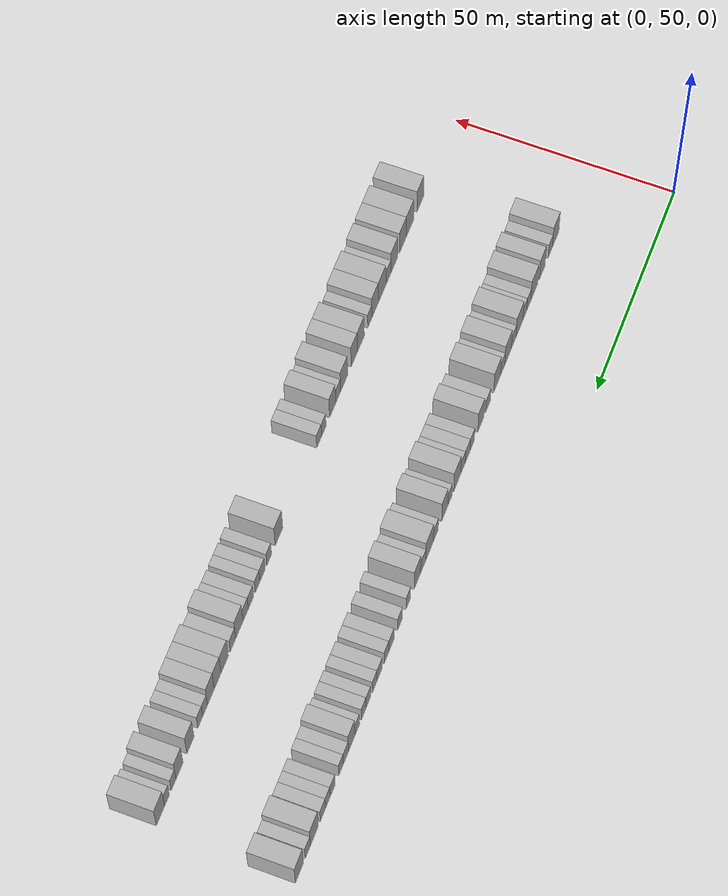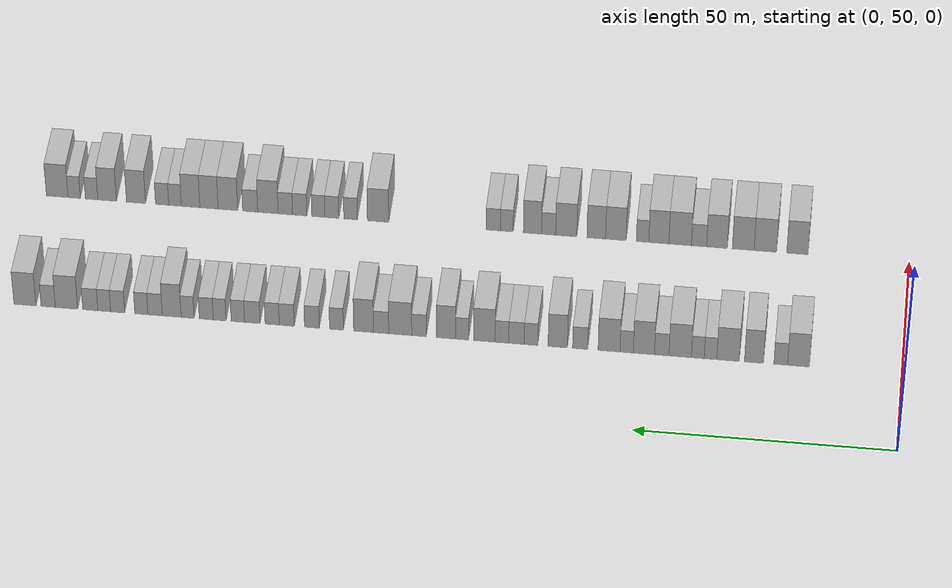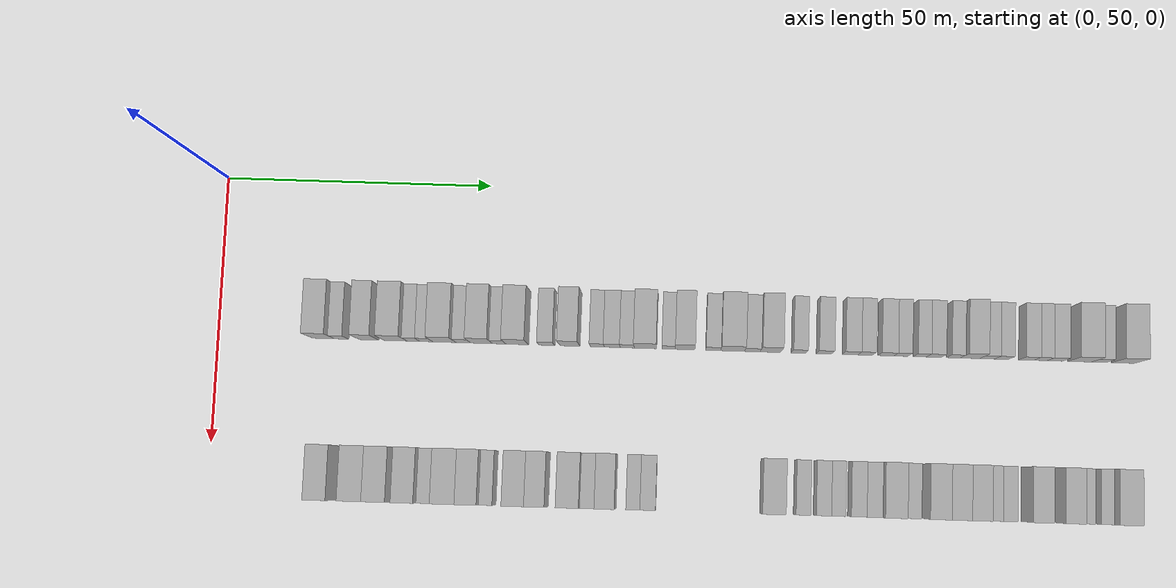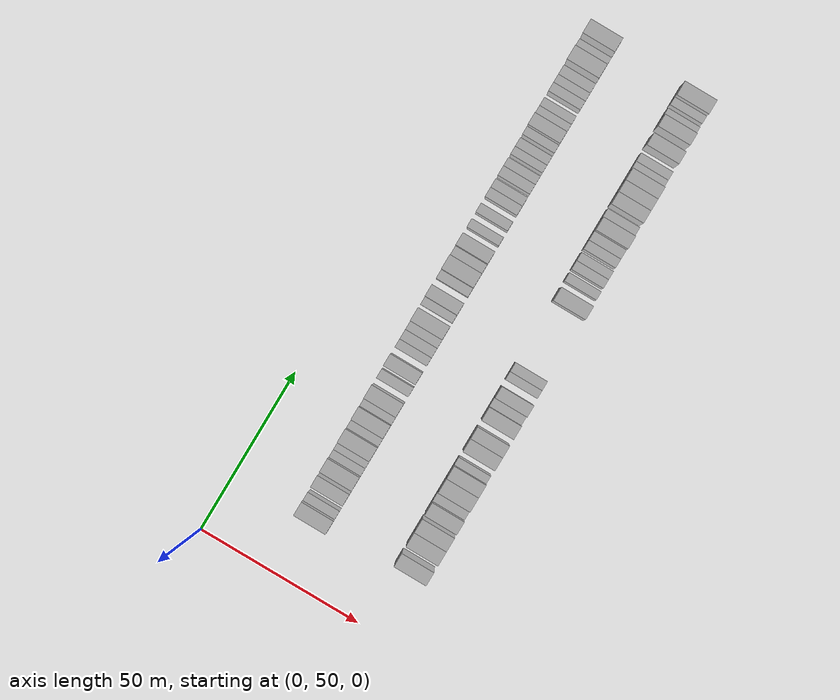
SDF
<sdf version="1.6">
 <world name="default">
  <model name="building_78">
   <static>1</static>
   <pose>25.0000 69.8768 0 0.000000 0.000000 0.000000</pose>
   <link name="link">
    <pose>0 0 4.50 0 0 0</pose>
    <collision name="collision"><geometry><box><size>10.0000 4.1798 9.0000</size></box></geometry></collision>
    <visual name="visual">
     <cast_shadows>0</cast_shadows>
     <geometry><box><size>10.0000 4.1798 9.0000</size></box></geometry>
     <material>
      <script>
       <uri>model://HANNAS_wall/materials/scripts</uri>
       <uri>model://HANNAS_wall/materials/textures</uri>
       <name>vrc/HANNAS_wall</name>
      </script>
     </material>
    </visual>
   </link>
  </model>
  <model name="building_79">
   <static>1</static>
   <pose>25.0000 73.2762 0 0.000000 0.000000 0.000000</pose>
   <link name="link">
    <pose>0 0 3.00 0 0 0</pose>
    <collision name="collision"><geometry><box><size>10.0000 2.6189 6.0000</size></box></geometry></collision>
    <visual name="visual">
     <cast_shadows>0</cast_shadows>
     <geometry><box><size>10.0000 2.6189 6.0000</size></box></geometry>
     <material>
      <script>
       <uri>model://HANNAS_wall/materials/scripts</uri>
       <uri>model://HANNAS_wall/materials/textures</uri>
       <name>vrc/HANNAS_wall</name>
      </script>
     </material>
    </visual>
   </link>
  </model>
  <model name="building_80">
   <static>1</static>
   <pose>25.0000 78.4050 0 0.000000 0.000000 0.000000</pose>
   <link name="link">
    <pose>0 0 4.50 0 0 0</pose>
    <collision name="collision"><geometry><box><size>10.0000 3.6388 9.0000</size></box></geometry></collision>
    <visual name="visual">
     <cast_shadows>0</cast_shadows>
     <geometry><box><size>10.0000 3.6388 9.0000</size></box></geometry>
     <material>
      <script>
       <uri>model://HANNAS_wall/materials/scripts</uri>
       <uri>model://HANNAS_wall/materials/textures</uri>
       <name>vrc/HANNAS_wall</name>
      </script>
     </material>
    </visual>
   </link>
  </model>
  <model name="building_81">
   <static>1</static>
   <pose>25.0000 83.3728 0 0.000000 0.000000 0.000000</pose>
   <link name="link">
    <pose>0 0 4.50 0 0 0</pose>
    <collision name="collision"><geometry><box><size>10.0000 4.2968 9.0000</size></box></geometry></collision>
    <visual name="visual">
     <cast_shadows>0</cast_shadows>
     <geometry><box><size>10.0000 4.2968 9.0000</size></box></geometry>
     <material>
      <script>
       <uri>model://HANNAS_wall/materials/scripts</uri>
       <uri>model://HANNAS_wall/materials/textures</uri>
       <name>vrc/HANNAS_wall</name>
      </script>
     </material>
    </visual>
   </link>
  </model>
  <model name="building_82">
   <static>1</static>
   <pose>25.0000 86.7367 0 0.000000 0.000000 0.000000</pose>
   <link name="link">
    <pose>0 0 3.00 0 0 0</pose>
    <collision name="collision"><geometry><box><size>10.0000 2.4311 6.0000</size></box></geometry></collision>
    <visual name="visual">
     <cast_shadows>0</cast_shadows>
     <geometry><box><size>10.0000 2.4311 6.0000</size></box></geometry>
     <material>
      <script>
       <uri>model://HANNAS_wall/materials/scripts</uri>
       <uri>model://HANNAS_wall/materials/textures</uri>
       <name>vrc/HANNAS_wall</name>
      </script>
     </material>
    </visual>
   </link>
  </model>
  <model name="building_83">
   <static>1</static>
   <pose>25.0000 89.1733 0 0.000000 0.000000 0.000000</pose>
   <link name="link">
    <pose>0 0 3.00 0 0 0</pose>
    <collision name="collision"><geometry><box><size>10.0000 2.4420 6.0000</size></box></geometry></collision>
    <visual name="visual">
     <cast_shadows>0</cast_shadows>
     <geometry><box><size>10.0000 2.4420 6.0000</size></box></geometry>
     <material>
      <script>
       <uri>model://HANNAS_wall/materials/scripts</uri>
       <uri>model://HANNAS_wall/materials/textures</uri>
       <name>vrc/HANNAS_wall</name>
      </script>
     </material>
    </visual>
   </link>
  </model>
  <model name="building_84">
   <static>1</static>
   <pose>25.0000 92.5579 0 0.000000 0.000000 0.000000</pose>
   <link name="link">
    <pose>0 0 4.50 0 0 0</pose>
    <collision name="collision"><geometry><box><size>10.0000 4.3274 9.0000</size></box></geometry></collision>
    <visual name="visual">
     <cast_shadows>0</cast_shadows>
     <geometry><box><size>10.0000 4.3274 9.0000</size></box></geometry>
     <material>
      <script>
       <uri>model://HANNAS_wall/materials/scripts</uri>
       <uri>model://HANNAS_wall/materials/textures</uri>
       <name>vrc/HANNAS_wall</name>
      </script>
     </material>
    </visual>
   </link>
  </model>
  <model name="building_85">
   <static>1</static>
   <pose>25.0000 96.1145 0 0.000000 0.000000 0.000000</pose>
   <link name="link">
    <pose>0 0 3.00 0 0 0</pose>
    <collision name="collision"><geometry><box><size>10.0000 2.7858 6.0000</size></box></geometry></collision>
    <visual name="visual">
     <cast_shadows>0</cast_shadows>
     <geometry><box><size>10.0000 2.7858 6.0000</size></box></geometry>
     <material>
      <script>
       <uri>model://HANNAS_wall/materials/scripts</uri>
       <uri>model://HANNAS_wall/materials/textures</uri>
       <name>vrc/HANNAS_wall</name>
      </script>
     </material>
    </visual>
   </link>
  </model>
  <model name="building_86">
   <static>1</static>
   <pose>25.0000 99.5493 0 0.000000 0.000000 0.000000</pose>
   <link name="link">
    <pose>0 0 4.50 0 0 0</pose>
    <collision name="collision"><geometry><box><size>10.0000 4.0838 9.0000</size></box></geometry></collision>
    <visual name="visual">
     <cast_shadows>0</cast_shadows>
     <geometry><box><size>10.0000 4.0838 9.0000</size></box></geometry>
     <material>
      <script>
       <uri>model://HANNAS_wall/materials/scripts</uri>
       <uri>model://HANNAS_wall/materials/textures</uri>
       <name>vrc/HANNAS_wall</name>
      </script>
     </material>
    </visual>
   </link>
  </model>
  <model name="building_87">
   <static>1</static>
   <pose>25.0000 102.8558 0 0.000000 0.000000 0.000000</pose>
   <link name="link">
    <pose>0 0 3.00 0 0 0</pose>
    <collision name="collision"><geometry><box><size>10.0000 2.5292 6.0000</size></box></geometry></collision>
    <visual name="visual">
     <cast_shadows>0</cast_shadows>
     <geometry><box><size>10.0000 2.5292 6.0000</size></box></geometry>
     <material>
      <script>
       <uri>model://HANNAS_wall/materials/scripts</uri>
       <uri>model://HANNAS_wall/materials/textures</uri>
       <name>vrc/HANNAS_wall</name>
      </script>
     </material>
    </visual>
   </link>
  </model>
  <model name="building_88">
   <static>1</static>
   <pose>25.0000 106.2417 0 0.000000 0.000000 0.000000</pose>
   <link name="link">
    <pose>0 0 4.50 0 0 0</pose>
    <collision name="collision"><geometry><box><size>10.0000 4.2426 9.0000</size></box></geometry></collision>
    <visual name="visual">
     <cast_shadows>0</cast_shadows>
     <geometry><box><size>10.0000 4.2426 9.0000</size></box></geometry>
     <material>
      <script>
       <uri>model://HANNAS_wall/materials/scripts</uri>
       <uri>model://HANNAS_wall/materials/textures</uri>
       <name>vrc/HANNAS_wall</name>
      </script>
     </material>
    </visual>
   </link>
  </model>
  <model name="building_89">
   <static>1</static>
   <pose>25.0000 111.8222 0 0.000000 0.000000 0.000000</pose>
   <link name="link">
    <pose>0 0 3.00 0 0 0</pose>
    <collision name="collision"><geometry><box><size>10.0000 2.9185 6.0000</size></box></geometry></collision>
    <visual name="visual">
     <cast_shadows>0</cast_shadows>
     <geometry><box><size>10.0000 2.9185 6.0000</size></box></geometry>
     <material>
      <script>
       <uri>model://HANNAS_wall/materials/scripts</uri>
       <uri>model://HANNAS_wall/materials/textures</uri>
       <name>vrc/HANNAS_wall</name>
      </script>
     </material>
    </visual>
   </link>
  </model>
  <model name="building_90">
   <static>1</static>
   <pose>25.0000 116.1416 0 0.000000 0.000000 0.000000</pose>
   <link name="link">
    <pose>0 0 4.50 0 0 0</pose>
    <collision name="collision"><geometry><box><size>10.0000 3.7203 9.0000</size></box></geometry></collision>
    <visual name="visual">
     <cast_shadows>0</cast_shadows>
     <geometry><box><size>10.0000 3.7203 9.0000</size></box></geometry>
     <material>
      <script>
       <uri>model://HANNAS_wall/materials/scripts</uri>
       <uri>model://HANNAS_wall/materials/textures</uri>
       <name>vrc/HANNAS_wall</name>
      </script>
     </material>
    </visual>
   </link>
  </model>
  <model name="building_91">
   <static>1</static>
   <pose>25.0000 121.2963 0 0.000000 0.000000 0.000000</pose>
   <link name="link">
    <pose>0 0 3.00 0 0 0</pose>
    <collision name="collision"><geometry><box><size>10.0000 2.5892 6.0000</size></box></geometry></collision>
    <visual name="visual">
     <cast_shadows>0</cast_shadows>
     <geometry><box><size>10.0000 2.5892 6.0000</size></box></geometry>
     <material>
      <script>
       <uri>model://HANNAS_wall/materials/scripts</uri>
       <uri>model://HANNAS_wall/materials/textures</uri>
       <name>vrc/HANNAS_wall</name>
      </script>
     </material>
    </visual>
   </link>
  </model>
  <model name="building_92">
   <static>1</static>
   <pose>25.0000 124.0865 0 0.000000 0.000000 0.000000</pose>
   <link name="link">
    <pose>0 0 3.00 0 0 0</pose>
    <collision name="collision"><geometry><box><size>10.0000 2.9911 6.0000</size></box></geometry></collision>
    <visual name="visual">
     <cast_shadows>0</cast_shadows>
     <geometry><box><size>10.0000 2.9911 6.0000</size></box></geometry>
     <material>
      <script>
       <uri>model://HANNAS_wall/materials/scripts</uri>
       <uri>model://HANNAS_wall/materials/textures</uri>
       <name>vrc/HANNAS_wall</name>
      </script>
     </material>
    </visual>
   </link>
  </model>
  <model name="building_93">
   <static>1</static>
   <pose>25.0000 126.9025 0 0.000000 0.000000 0.000000</pose>
   <link name="link">
    <pose>0 0 3.00 0 0 0</pose>
    <collision name="collision"><geometry><box><size>10.0000 2.6409 6.0000</size></box></geometry></collision>
    <visual name="visual">
     <cast_shadows>0</cast_shadows>
     <geometry><box><size>10.0000 2.6409 6.0000</size></box></geometry>
     <material>
      <script>
       <uri>model://HANNAS_wall/materials/scripts</uri>
       <uri>model://HANNAS_wall/materials/textures</uri>
       <name>vrc/HANNAS_wall</name>
      </script>
     </material>
    </visual>
   </link>
  </model>
  <model name="building_94">
   <static>1</static>
   <pose>25.0000 130.3053 0 0.000000 0.000000 0.000000</pose>
   <link name="link">
    <pose>0 0 4.50 0 0 0</pose>
    <collision name="collision"><geometry><box><size>10.0000 4.1647 9.0000</size></box></geometry></collision>
    <visual name="visual">
     <cast_shadows>0</cast_shadows>
     <geometry><box><size>10.0000 4.1647 9.0000</size></box></geometry>
     <material>
      <script>
       <uri>model://HANNAS_wall/materials/scripts</uri>
       <uri>model://HANNAS_wall/materials/textures</uri>
       <name>vrc/HANNAS_wall</name>
      </script>
     </material>
    </visual>
   </link>
  </model>
  <model name="building_95">
   <static>1</static>
   <pose>25.0000 134.6357 0 0.000000 0.000000 0.000000</pose>
   <link name="link">
    <pose>0 0 3.00 0 0 0</pose>
    <collision name="collision"><geometry><box><size>10.0000 2.4962 6.0000</size></box></geometry></collision>
    <visual name="visual">
     <cast_shadows>0</cast_shadows>
     <geometry><box><size>10.0000 2.4962 6.0000</size></box></geometry>
     <material>
      <script>
       <uri>model://HANNAS_wall/materials/scripts</uri>
       <uri>model://HANNAS_wall/materials/textures</uri>
       <name>vrc/HANNAS_wall</name>
      </script>
     </material>
    </visual>
   </link>
  </model>
  <model name="building_96">
   <static>1</static>
   <pose>25.0000 137.7165 0 0.000000 0.000000 0.000000</pose>
   <link name="link">
    <pose>0 0 4.50 0 0 0</pose>
    <collision name="collision"><geometry><box><size>10.0000 3.6654 9.0000</size></box></geometry></collision>
    <visual name="visual">
     <cast_shadows>0</cast_shadows>
     <geometry><box><size>10.0000 3.6654 9.0000</size></box></geometry>
     <material>
      <script>
       <uri>model://HANNAS_wall/materials/scripts</uri>
       <uri>model://HANNAS_wall/materials/textures</uri>
       <name>vrc/HANNAS_wall</name>
      </script>
     </material>
    </visual>
   </link>
  </model>
  <model name="building_97">
   <static>1</static>
   <pose>25.0000 142.9548 0 0.000000 0.000000 0.000000</pose>
   <link name="link">
    <pose>0 0 3.00 0 0 0</pose>
    <collision name="collision"><geometry><box><size>10.0000 2.8111 6.0000</size></box></geometry></collision>
    <visual name="visual">
     <cast_shadows>0</cast_shadows>
     <geometry><box><size>10.0000 2.8111 6.0000</size></box></geometry>
     <material>
      <script>
       <uri>model://HANNAS_wall/materials/scripts</uri>
       <uri>model://HANNAS_wall/materials/textures</uri>
       <name>vrc/HANNAS_wall</name>
      </script>
     </material>
    </visual>
   </link>
  </model>
  <model name="building_98">
   <static>1</static>
   <pose>25.0000 146.5897 0 0.000000 0.000000 0.000000</pose>
   <link name="link">
    <pose>0 0 4.50 0 0 0</pose>
    <collision name="collision"><geometry><box><size>10.0000 4.4589 9.0000</size></box></geometry></collision>
    <visual name="visual">
     <cast_shadows>0</cast_shadows>
     <geometry><box><size>10.0000 4.4589 9.0000</size></box></geometry>
     <material>
      <script>
       <uri>model://HANNAS_wall/materials/scripts</uri>
       <uri>model://HANNAS_wall/materials/textures</uri>
       <name>vrc/HANNAS_wall</name>
      </script>
     </material>
    </visual>
   </link>
  </model>
  <model name="building_99">
   <static>1</static>
   <pose>25.0000 150.2993 0 0.000000 0.000000 0.000000</pose>
   <link name="link">
    <pose>0 0 3.00 0 0 0</pose>
    <collision name="collision"><geometry><box><size>10.0000 2.9602 6.0000</size></box></geometry></collision>
    <visual name="visual">
     <cast_shadows>0</cast_shadows>
     <geometry><box><size>10.0000 2.9602 6.0000</size></box></geometry>
     <material>
      <script>
       <uri>model://HANNAS_wall/materials/scripts</uri>
       <uri>model://HANNAS_wall/materials/textures</uri>
       <name>vrc/HANNAS_wall</name>
      </script>
     </material>
    </visual>
   </link>
  </model>
  <model name="building_100">
   <static>1</static>
   <pose>25.0000 153.7009 0 0.000000 0.000000 0.000000</pose>
   <link name="link">
    <pose>0 0 4.50 0 0 0</pose>
    <collision name="collision"><geometry><box><size>10.0000 3.8431 9.0000</size></box></geometry></collision>
    <visual name="visual">
     <cast_shadows>0</cast_shadows>
     <geometry><box><size>10.0000 3.8431 9.0000</size></box></geometry>
     <material>
      <script>
       <uri>model://HANNAS_wall/materials/scripts</uri>
       <uri>model://HANNAS_wall/materials/textures</uri>
       <name>vrc/HANNAS_wall</name>
      </script>
     </material>
    </visual>
   </link>
  </model>
  <model name="building_101">
   <static>1</static>
   <pose>25.0000 158.9646 0 0.000000 0.000000 0.000000</pose>
   <link name="link">
    <pose>0 0 3.00 0 0 0</pose>
    <collision name="collision"><geometry><box><size>10.0000 2.6843 6.0000</size></box></geometry></collision>
    <visual name="visual">
     <cast_shadows>0</cast_shadows>
     <geometry><box><size>10.0000 2.6843 6.0000</size></box></geometry>
     <material>
      <script>
       <uri>model://HANNAS_wall/materials/scripts</uri>
       <uri>model://HANNAS_wall/materials/textures</uri>
       <name>vrc/HANNAS_wall</name>
      </script>
     </material>
    </visual>
   </link>
  </model>
  <model name="building_102">
   <static>1</static>
   <pose>25.0000 163.7403 0 0.000000 0.000000 0.000000</pose>
   <link name="link">
    <pose>0 0 3.00 0 0 0</pose>
    <collision name="collision"><geometry><box><size>10.0000 2.8672 6.0000</size></box></geometry></collision>
    <visual name="visual">
     <cast_shadows>0</cast_shadows>
     <geometry><box><size>10.0000 2.8672 6.0000</size></box></geometry>
     <material>
      <script>
       <uri>model://HANNAS_wall/materials/scripts</uri>
       <uri>model://HANNAS_wall/materials/textures</uri>
       <name>vrc/HANNAS_wall</name>
      </script>
     </material>
    </visual>
   </link>
  </model>
  <model name="building_103">
   <static>1</static>
   <pose>25.0000 168.6398 0 0.000000 0.000000 0.000000</pose>
   <link name="link">
    <pose>0 0 3.00 0 0 0</pose>
    <collision name="collision"><geometry><box><size>10.0000 2.9318 6.0000</size></box></geometry></collision>
    <visual name="visual">
     <cast_shadows>0</cast_shadows>
     <geometry><box><size>10.0000 2.9318 6.0000</size></box></geometry>
     <material>
      <script>
       <uri>model://HANNAS_wall/materials/scripts</uri>
       <uri>model://HANNAS_wall/materials/textures</uri>
       <name>vrc/HANNAS_wall</name>
      </script>
     </material>
    </visual>
   </link>
  </model>
  <model name="building_104">
   <static>1</static>
   <pose>25.0000 171.4720 0 0.000000 0.000000 0.000000</pose>
   <link name="link">
    <pose>0 0 3.00 0 0 0</pose>
    <collision name="collision"><geometry><box><size>10.0000 2.7326 6.0000</size></box></geometry></collision>
    <visual name="visual">
     <cast_shadows>0</cast_shadows>
     <geometry><box><size>10.0000 2.7326 6.0000</size></box></geometry>
     <material>
      <script>
       <uri>model://HANNAS_wall/materials/scripts</uri>
       <uri>model://HANNAS_wall/materials/textures</uri>
       <name>vrc/HANNAS_wall</name>
      </script>
     </material>
    </visual>
   </link>
  </model>
  <model name="building_105">
   <static>1</static>
   <pose>25.0000 175.3368 0 0.000000 0.000000 0.000000</pose>
   <link name="link">
    <pose>0 0 3.00 0 0 0</pose>
    <collision name="collision"><geometry><box><size>10.0000 2.9971 6.0000</size></box></geometry></collision>
    <visual name="visual">
     <cast_shadows>0</cast_shadows>
     <geometry><box><size>10.0000 2.9971 6.0000</size></box></geometry>
     <material>
      <script>
       <uri>model://HANNAS_wall/materials/scripts</uri>
       <uri>model://HANNAS_wall/materials/textures</uri>
       <name>vrc/HANNAS_wall</name>
      </script>
     </material>
    </visual>
   </link>
  </model>
  <model name="building_106">
   <static>1</static>
   <pose>25.0000 178.1459 0 0.000000 0.000000 0.000000</pose>
   <link name="link">
    <pose>0 0 3.00 0 0 0</pose>
    <collision name="collision"><geometry><box><size>10.0000 2.6212 6.0000</size></box></geometry></collision>
    <visual name="visual">
     <cast_shadows>0</cast_shadows>
     <geometry><box><size>10.0000 2.6212 6.0000</size></box></geometry>
     <material>
      <script>
       <uri>model://HANNAS_wall/materials/scripts</uri>
       <uri>model://HANNAS_wall/materials/textures</uri>
       <name>vrc/HANNAS_wall</name>
      </script>
     </material>
    </visual>
   </link>
  </model>
  <model name="building_107">
   <static>1</static>
   <pose>25.0000 181.6971 0 0.000000 0.000000 0.000000</pose>
   <link name="link">
    <pose>0 0 3.00 0 0 0</pose>
    <collision name="collision"><geometry><box><size>10.0000 2.4813 6.0000</size></box></geometry></collision>
    <visual name="visual">
     <cast_shadows>0</cast_shadows>
     <geometry><box><size>10.0000 2.4813 6.0000</size></box></geometry>
     <material>
      <script>
       <uri>model://HANNAS_wall/materials/scripts</uri>
       <uri>model://HANNAS_wall/materials/textures</uri>
       <name>vrc/HANNAS_wall</name>
      </script>
     </material>
    </visual>
   </link>
  </model>
  <model name="building_108">
   <static>1</static>
   <pose>25.0000 184.3073 0 0.000000 0.000000 0.000000</pose>
   <link name="link">
    <pose>0 0 3.00 0 0 0</pose>
    <collision name="collision"><geometry><box><size>10.0000 2.7390 6.0000</size></box></geometry></collision>
    <visual name="visual">
     <cast_shadows>0</cast_shadows>
     <geometry><box><size>10.0000 2.7390 6.0000</size></box></geometry>
     <material>
      <script>
       <uri>model://HANNAS_wall/materials/scripts</uri>
       <uri>model://HANNAS_wall/materials/textures</uri>
       <name>vrc/HANNAS_wall</name>
      </script>
     </material>
    </visual>
   </link>
  </model>
  <model name="building_109">
   <static>1</static>
   <pose>25.0000 187.9462 0 0.000000 0.000000 0.000000</pose>
   <link name="link">
    <pose>0 0 3.00 0 0 0</pose>
    <collision name="collision"><geometry><box><size>10.0000 2.5390 6.0000</size></box></geometry></collision>
    <visual name="visual">
     <cast_shadows>0</cast_shadows>
     <geometry><box><size>10.0000 2.5390 6.0000</size></box></geometry>
     <material>
      <script>
       <uri>model://HANNAS_wall/materials/scripts</uri>
       <uri>model://HANNAS_wall/materials/textures</uri>
       <name>vrc/HANNAS_wall</name>
      </script>
     </material>
    </visual>
   </link>
  </model>
  <model name="building_110">
   <static>1</static>
   <pose>25.0000 191.0550 0 0.000000 0.000000 0.000000</pose>
   <link name="link">
    <pose>0 0 4.50 0 0 0</pose>
    <collision name="collision"><geometry><box><size>10.0000 3.6785 9.0000</size></box></geometry></collision>
    <visual name="visual">
     <cast_shadows>0</cast_shadows>
     <geometry><box><size>10.0000 3.6785 9.0000</size></box></geometry>
     <material>
      <script>
       <uri>model://HANNAS_wall/materials/scripts</uri>
       <uri>model://HANNAS_wall/materials/textures</uri>
       <name>vrc/HANNAS_wall</name>
      </script>
     </material>
    </visual>
   </link>
  </model>
  <model name="building_111">
   <static>1</static>
   <pose>25.0000 194.2967 0 0.000000 0.000000 0.000000</pose>
   <link name="link">
    <pose>0 0 3.00 0 0 0</pose>
    <collision name="collision"><geometry><box><size>10.0000 2.8050 6.0000</size></box></geometry></collision>
    <visual name="visual">
     <cast_shadows>0</cast_shadows>
     <geometry><box><size>10.0000 2.8050 6.0000</size></box></geometry>
     <material>
      <script>
       <uri>model://HANNAS_wall/materials/scripts</uri>
       <uri>model://HANNAS_wall/materials/textures</uri>
       <name>vrc/HANNAS_wall</name>
      </script>
     </material>
    </visual>
   </link>
  </model>
  <model name="building_112">
   <static>1</static>
   <pose>25.0000 196.9752 0 0.000000 0.000000 0.000000</pose>
   <link name="link">
    <pose>0 0 3.00 0 0 0</pose>
    <collision name="collision"><geometry><box><size>10.0000 2.5521 6.0000</size></box></geometry></collision>
    <visual name="visual">
     <cast_shadows>0</cast_shadows>
     <geometry><box><size>10.0000 2.5521 6.0000</size></box></geometry>
     <material>
      <script>
       <uri>model://HANNAS_wall/materials/scripts</uri>
       <uri>model://HANNAS_wall/materials/textures</uri>
       <name>vrc/HANNAS_wall</name>
      </script>
     </material>
    </visual>
   </link>
  </model>
  <model name="building_113">
   <static>1</static>
   <pose>25.0000 201.6248 0 0.000000 0.000000 0.000000</pose>
   <link name="link">
    <pose>0 0 3.00 0 0 0</pose>
    <collision name="collision"><geometry><box><size>10.0000 2.7472 6.0000</size></box></geometry></collision>
    <visual name="visual">
     <cast_shadows>0</cast_shadows>
     <geometry><box><size>10.0000 2.7472 6.0000</size></box></geometry>
     <material>
      <script>
       <uri>model://HANNAS_wall/materials/scripts</uri>
       <uri>model://HANNAS_wall/materials/textures</uri>
       <name>vrc/HANNAS_wall</name>
      </script>
     </material>
    </visual>
   </link>
  </model>
  <model name="building_114">
   <static>1</static>
   <pose>25.0000 204.2453 0 0.000000 0.000000 0.000000</pose>
   <link name="link">
    <pose>0 0 3.00 0 0 0</pose>
    <collision name="collision"><geometry><box><size>10.0000 2.4937 6.0000</size></box></geometry></collision>
    <visual name="visual">
     <cast_shadows>0</cast_shadows>
     <geometry><box><size>10.0000 2.4937 6.0000</size></box></geometry>
     <material>
      <script>
       <uri>model://HANNAS_wall/materials/scripts</uri>
       <uri>model://HANNAS_wall/materials/textures</uri>
       <name>vrc/HANNAS_wall</name>
      </script>
     </material>
    </visual>
   </link>
  </model>
  <model name="building_115">
   <static>1</static>
   <pose>25.0000 206.9660 0 0.000000 0.000000 0.000000</pose>
   <link name="link">
    <pose>0 0 3.00 0 0 0</pose>
    <collision name="collision"><geometry><box><size>10.0000 2.9478 6.0000</size></box></geometry></collision>
    <visual name="visual">
     <cast_shadows>0</cast_shadows>
     <geometry><box><size>10.0000 2.9478 6.0000</size></box></geometry>
     <material>
      <script>
       <uri>model://HANNAS_wall/materials/scripts</uri>
       <uri>model://HANNAS_wall/materials/textures</uri>
       <name>vrc/HANNAS_wall</name>
      </script>
     </material>
    </visual>
   </link>
  </model>
  <model name="building_116">
   <static>1</static>
   <pose>25.0000 211.6243 0 0.000000 0.000000 0.000000</pose>
   <link name="link">
    <pose>0 0 4.50 0 0 0</pose>
    <collision name="collision"><geometry><box><size>10.0000 4.3688 9.0000</size></box></geometry></collision>
    <visual name="visual">
     <cast_shadows>0</cast_shadows>
     <geometry><box><size>10.0000 4.3688 9.0000</size></box></geometry>
     <material>
      <script>
       <uri>model://HANNAS_wall/materials/scripts</uri>
       <uri>model://HANNAS_wall/materials/textures</uri>
       <name>vrc/HANNAS_wall</name>
      </script>
     </material>
    </visual>
   </link>
  </model>
  <model name="building_117">
   <static>1</static>
   <pose>25.0000 215.2082 0 0.000000 0.000000 0.000000</pose>
   <link name="link">
    <pose>0 0 3.00 0 0 0</pose>
    <collision name="collision"><geometry><box><size>10.0000 2.7990 6.0000</size></box></geometry></collision>
    <visual name="visual">
     <cast_shadows>0</cast_shadows>
     <geometry><box><size>10.0000 2.7990 6.0000</size></box></geometry>
     <material>
      <script>
       <uri>model://HANNAS_wall/materials/scripts</uri>
       <uri>model://HANNAS_wall/materials/textures</uri>
       <name>vrc/HANNAS_wall</name>
      </script>
     </material>
    </visual>
   </link>
  </model>
  <model name="building_118">
   <static>1</static>
   <pose>25.0000 219.7642 0 0.000000 0.000000 0.000000</pose>
   <link name="link">
    <pose>0 0 4.50 0 0 0</pose>
    <collision name="collision"><geometry><box><size>10.0000 4.3131 9.0000</size></box></geometry></collision>
    <visual name="visual">
     <cast_shadows>0</cast_shadows>
     <geometry><box><size>10.0000 4.3131 9.0000</size></box></geometry>
     <material>
      <script>
       <uri>model://HANNAS_wall/materials/scripts</uri>
       <uri>model://HANNAS_wall/materials/textures</uri>
       <name>vrc/HANNAS_wall</name>
      </script>
     </material>
    </visual>
   </link>
  </model>
  <model name="building_189">
   <static>1</static>
   <pose>55.0000 71.9140 0 0.000000 0.000000 0.000000</pose>
   <link name="link">
    <pose>0 0 4.50 0 0 0</pose>
    <collision name="collision"><geometry><box><size>10.0000 4.1548 9.0000</size></box></geometry></collision>
    <visual name="visual">
     <cast_shadows>0</cast_shadows>
     <geometry><box><size>10.0000 4.1548 9.0000</size></box></geometry>
     <material>
      <script>
       <uri>model://HANNAS_wall/materials/scripts</uri>
       <uri>model://HANNAS_wall/materials/textures</uri>
       <name>vrc/HANNAS_wall</name>
      </script>
     </material>
    </visual>
   </link>
  </model>
  <model name="building_190">
   <static>1</static>
   <pose>55.0000 78.1893 0 0.000000 0.000000 0.000000</pose>
   <link name="link">
    <pose>0 0 4.50 0 0 0</pose>
    <collision name="collision"><geometry><box><size>10.0000 4.3958 9.0000</size></box></geometry></collision>
    <visual name="visual">
     <cast_shadows>0</cast_shadows>
     <geometry><box><size>10.0000 4.3958 9.0000</size></box></geometry>
     <material>
      <script>
       <uri>model://HANNAS_wall/materials/scripts</uri>
       <uri>model://HANNAS_wall/materials/textures</uri>
       <name>vrc/HANNAS_wall</name>
      </script>
     </material>
    </visual>
   </link>
  </model>
  <model name="building_191">
   <static>1</static>
   <pose>55.0000 82.5237 0 0.000000 0.000000 0.000000</pose>
   <link name="link">
    <pose>0 0 4.50 0 0 0</pose>
    <collision name="collision"><geometry><box><size>10.0000 4.2730 9.0000</size></box></geometry></collision>
    <visual name="visual">
     <cast_shadows>0</cast_shadows>
     <geometry><box><size>10.0000 4.2730 9.0000</size></box></geometry>
     <material>
      <script>
       <uri>model://HANNAS_wall/materials/scripts</uri>
       <uri>model://HANNAS_wall/materials/textures</uri>
       <name>vrc/HANNAS_wall</name>
      </script>
     </material>
    </visual>
   </link>
  </model>
  <model name="building_192">
   <static>1</static>
   <pose>55.0000 87.6903 0 0.000000 0.000000 0.000000</pose>
   <link name="link">
    <pose>0 0 4.50 0 0 0</pose>
    <collision name="collision"><geometry><box><size>10.0000 4.0600 9.0000</size></box></geometry></collision>
    <visual name="visual">
     <cast_shadows>0</cast_shadows>
     <geometry><box><size>10.0000 4.0600 9.0000</size></box></geometry>
     <material>
      <script>
       <uri>model://HANNAS_wall/materials/scripts</uri>
       <uri>model://HANNAS_wall/materials/textures</uri>
       <name>vrc/HANNAS_wall</name>
      </script>
     </material>
    </visual>
   </link>
  </model>
  <model name="building_193">
   <static>1</static>
   <pose>55.0000 91.1979 0 0.000000 0.000000 0.000000</pose>
   <link name="link">
    <pose>0 0 3.00 0 0 0</pose>
    <collision name="collision"><geometry><box><size>10.0000 2.9552 6.0000</size></box></geometry></collision>
    <visual name="visual">
     <cast_shadows>0</cast_shadows>
     <geometry><box><size>10.0000 2.9552 6.0000</size></box></geometry>
     <material>
      <script>
       <uri>model://HANNAS_wall/materials/scripts</uri>
       <uri>model://HANNAS_wall/materials/textures</uri>
       <name>vrc/HANNAS_wall</name>
      </script>
     </material>
    </visual>
   </link>
  </model>
  <model name="building_194">
   <static>1</static>
   <pose>55.0000 94.8943 0 0.000000 0.000000 0.000000</pose>
   <link name="link">
    <pose>0 0 4.50 0 0 0</pose>
    <collision name="collision"><geometry><box><size>10.0000 4.4377 9.0000</size></box></geometry></collision>
    <visual name="visual">
     <cast_shadows>0</cast_shadows>
     <geometry><box><size>10.0000 4.4377 9.0000</size></box></geometry>
     <material>
      <script>
       <uri>model://HANNAS_wall/materials/scripts</uri>
       <uri>model://HANNAS_wall/materials/textures</uri>
       <name>vrc/HANNAS_wall</name>
      </script>
     </material>
    </visual>
   </link>
  </model>
  <model name="building_195">
   <static>1</static>
   <pose>55.0000 99.0924 0 0.000000 0.000000 0.000000</pose>
   <link name="link">
    <pose>0 0 4.50 0 0 0</pose>
    <collision name="collision"><geometry><box><size>10.0000 3.9585 9.0000</size></box></geometry></collision>
    <visual name="visual">
     <cast_shadows>0</cast_shadows>
     <geometry><box><size>10.0000 3.9585 9.0000</size></box></geometry>
     <material>
      <script>
       <uri>model://HANNAS_wall/materials/scripts</uri>
       <uri>model://HANNAS_wall/materials/textures</uri>
       <name>vrc/HANNAS_wall</name>
      </script>
     </material>
    </visual>
   </link>
  </model>
  <model name="building_196">
   <static>1</static>
   <pose>55.0000 102.2988 0 0.000000 0.000000 0.000000</pose>
   <link name="link">
    <pose>0 0 3.00 0 0 0</pose>
    <collision name="collision"><geometry><box><size>10.0000 2.4543 6.0000</size></box></geometry></collision>
    <visual name="visual">
     <cast_shadows>0</cast_shadows>
     <geometry><box><size>10.0000 2.4543 6.0000</size></box></geometry>
     <material>
      <script>
       <uri>model://HANNAS_wall/materials/scripts</uri>
       <uri>model://HANNAS_wall/materials/textures</uri>
       <name>vrc/HANNAS_wall</name>
      </script>
     </material>
    </visual>
   </link>
  </model>
  <model name="building_197">
   <static>1</static>
   <pose>55.0000 107.5503 0 0.000000 0.000000 0.000000</pose>
   <link name="link">
    <pose>0 0 4.50 0 0 0</pose>
    <collision name="collision"><geometry><box><size>10.0000 4.0487 9.0000</size></box></geometry></collision>
    <visual name="visual">
     <cast_shadows>0</cast_shadows>
     <geometry><box><size>10.0000 4.0487 9.0000</size></box></geometry>
     <material>
      <script>
       <uri>model://HANNAS_wall/materials/scripts</uri>
       <uri>model://HANNAS_wall/materials/textures</uri>
       <name>vrc/HANNAS_wall</name>
      </script>
     </material>
    </visual>
   </link>
  </model>
  <model name="building_198">
   <static>1</static>
   <pose>55.0000 111.4070 0 0.000000 0.000000 0.000000</pose>
   <link name="link">
    <pose>0 0 4.50 0 0 0</pose>
    <collision name="collision"><geometry><box><size>10.0000 3.6648 9.0000</size></box></geometry></collision>
    <visual name="visual">
     <cast_shadows>0</cast_shadows>
     <geometry><box><size>10.0000 3.6648 9.0000</size></box></geometry>
     <material>
      <script>
       <uri>model://HANNAS_wall/materials/scripts</uri>
       <uri>model://HANNAS_wall/materials/textures</uri>
       <name>vrc/HANNAS_wall</name>
      </script>
     </material>
    </visual>
   </link>
  </model>
  <model name="building_199">
   <static>1</static>
   <pose>55.0000 117.3200 0 0.000000 0.000000 0.000000</pose>
   <link name="link">
    <pose>0 0 4.50 0 0 0</pose>
    <collision name="collision"><geometry><box><size>10.0000 4.1611 9.0000</size></box></geometry></collision>
    <visual name="visual">
     <cast_shadows>0</cast_shadows>
     <geometry><box><size>10.0000 4.1611 9.0000</size></box></geometry>
     <material>
      <script>
       <uri>model://HANNAS_wall/materials/scripts</uri>
       <uri>model://HANNAS_wall/materials/textures</uri>
       <name>vrc/HANNAS_wall</name>
      </script>
     </material>
    </visual>
   </link>
  </model>
  <model name="building_200">
   <static>1</static>
   <pose>55.0000 120.7949 0 0.000000 0.000000 0.000000</pose>
   <link name="link">
    <pose>0 0 3.00 0 0 0</pose>
    <collision name="collision"><geometry><box><size>10.0000 2.7888 6.0000</size></box></geometry></collision>
    <visual name="visual">
     <cast_shadows>0</cast_shadows>
     <geometry><box><size>10.0000 2.7888 6.0000</size></box></geometry>
     <material>
      <script>
       <uri>model://HANNAS_wall/materials/scripts</uri>
       <uri>model://HANNAS_wall/materials/textures</uri>
       <name>vrc/HANNAS_wall</name>
      </script>
     </material>
    </visual>
   </link>
  </model>
  <model name="building_201">
   <static>1</static>
   <pose>55.0000 123.9910 0 0.000000 0.000000 0.000000</pose>
   <link name="link">
    <pose>0 0 4.50 0 0 0</pose>
    <collision name="collision"><geometry><box><size>10.0000 3.6033 9.0000</size></box></geometry></collision>
    <visual name="visual">
     <cast_shadows>0</cast_shadows>
     <geometry><box><size>10.0000 3.6033 9.0000</size></box></geometry>
     <material>
      <script>
       <uri>model://HANNAS_wall/materials/scripts</uri>
       <uri>model://HANNAS_wall/materials/textures</uri>
       <name>vrc/HANNAS_wall</name>
      </script>
     </material>
    </visual>
   </link>
  </model>
  <model name="building_202">
   <static>1</static>
   <pose>55.0000 129.0650 0 0.000000 0.000000 0.000000</pose>
   <link name="link">
    <pose>0 0 3.00 0 0 0</pose>
    <collision name="collision"><geometry><box><size>10.0000 2.5448 6.0000</size></box></geometry></collision>
    <visual name="visual">
     <cast_shadows>0</cast_shadows>
     <geometry><box><size>10.0000 2.5448 6.0000</size></box></geometry>
     <material>
      <script>
       <uri>model://HANNAS_wall/materials/scripts</uri>
       <uri>model://HANNAS_wall/materials/textures</uri>
       <name>vrc/HANNAS_wall</name>
      </script>
     </material>
    </visual>
   </link>
  </model>
  <model name="building_203">
   <static>1</static>
   <pose>55.0000 131.7556 0 0.000000 0.000000 0.000000</pose>
   <link name="link">
    <pose>0 0 3.00 0 0 0</pose>
    <collision name="collision"><geometry><box><size>10.0000 2.8365 6.0000</size></box></geometry></collision>
    <visual name="visual">
     <cast_shadows>0</cast_shadows>
     <geometry><box><size>10.0000 2.8365 6.0000</size></box></geometry>
     <material>
      <script>
       <uri>model://HANNAS_wall/materials/scripts</uri>
       <uri>model://HANNAS_wall/materials/textures</uri>
       <name>vrc/HANNAS_wall</name>
      </script>
     </material>
    </visual>
   </link>
  </model>
  <model name="building_204">
   <static>1</static>
   <pose>55.0000 154.5293 0 0.000000 0.000000 0.000000</pose>
   <link name="link">
    <pose>0 0 4.50 0 0 0</pose>
    <collision name="collision"><geometry><box><size>10.0000 4.2369 9.0000</size></box></geometry></collision>
    <visual name="visual">
     <cast_shadows>0</cast_shadows>
     <geometry><box><size>10.0000 4.2369 9.0000</size></box></geometry>
     <material>
      <script>
       <uri>model://HANNAS_wall/materials/scripts</uri>
       <uri>model://HANNAS_wall/materials/textures</uri>
       <name>vrc/HANNAS_wall</name>
      </script>
     </material>
    </visual>
   </link>
  </model>
  <model name="building_205">
   <static>1</static>
   <pose>55.0000 159.9886 0 0.000000 0.000000 0.000000</pose>
   <link name="link">
    <pose>0 0 3.00 0 0 0</pose>
    <collision name="collision"><geometry><box><size>10.0000 2.6817 6.0000</size></box></geometry></collision>
    <visual name="visual">
     <cast_shadows>0</cast_shadows>
     <geometry><box><size>10.0000 2.6817 6.0000</size></box></geometry>
     <material>
      <script>
       <uri>model://HANNAS_wall/materials/scripts</uri>
       <uri>model://HANNAS_wall/materials/textures</uri>
       <name>vrc/HANNAS_wall</name>
      </script>
     </material>
    </visual>
   </link>
  </model>
  <model name="building_206">
   <static>1</static>
   <pose>55.0000 163.7060 0 0.000000 0.000000 0.000000</pose>
   <link name="link">
    <pose>0 0 3.00 0 0 0</pose>
    <collision name="collision"><geometry><box><size>10.0000 2.7531 6.0000</size></box></geometry></collision>
    <visual name="visual">
     <cast_shadows>0</cast_shadows>
     <geometry><box><size>10.0000 2.7531 6.0000</size></box></geometry>
     <material>
      <script>
       <uri>model://HANNAS_wall/materials/scripts</uri>
       <uri>model://HANNAS_wall/materials/textures</uri>
       <name>vrc/HANNAS_wall</name>
      </script>
     </material>
    </visual>
   </link>
  </model>
  <model name="building_207">
   <static>1</static>
   <pose>55.0000 166.3815 0 0.000000 0.000000 0.000000</pose>
   <link name="link">
    <pose>0 0 3.00 0 0 0</pose>
    <collision name="collision"><geometry><box><size>10.0000 2.5978 6.0000</size></box></geometry></collision>
    <visual name="visual">
     <cast_shadows>0</cast_shadows>
     <geometry><box><size>10.0000 2.5978 6.0000</size></box></geometry>
     <material>
      <script>
       <uri>model://HANNAS_wall/materials/scripts</uri>
       <uri>model://HANNAS_wall/materials/textures</uri>
       <name>vrc/HANNAS_wall</name>
      </script>
     </material>
    </visual>
   </link>
  </model>
  <model name="building_208">
   <static>1</static>
   <pose>55.0000 170.1009 0 0.000000 0.000000 0.000000</pose>
   <link name="link">
    <pose>0 0 3.00 0 0 0</pose>
    <collision name="collision"><geometry><box><size>10.0000 2.8410 6.0000</size></box></geometry></collision>
    <visual name="visual">
     <cast_shadows>0</cast_shadows>
     <geometry><box><size>10.0000 2.8410 6.0000</size></box></geometry>
     <material>
      <script>
       <uri>model://HANNAS_wall/materials/scripts</uri>
       <uri>model://HANNAS_wall/materials/textures</uri>
       <name>vrc/HANNAS_wall</name>
      </script>
     </material>
    </visual>
   </link>
  </model>
  <model name="building_209">
   <static>1</static>
   <pose>55.0000 172.9560 0 0.000000 0.000000 0.000000</pose>
   <link name="link">
    <pose>0 0 3.00 0 0 0</pose>
    <collision name="collision"><geometry><box><size>10.0000 2.8693 6.0000</size></box></geometry></collision>
    <visual name="visual">
     <cast_shadows>0</cast_shadows>
     <geometry><box><size>10.0000 2.8693 6.0000</size></box></geometry>
     <material>
      <script>
       <uri>model://HANNAS_wall/materials/scripts</uri>
       <uri>model://HANNAS_wall/materials/textures</uri>
       <name>vrc/HANNAS_wall</name>
      </script>
     </material>
    </visual>
   </link>
  </model>
  <model name="building_210">
   <static>1</static>
   <pose>55.0000 176.4203 0 0.000000 0.000000 0.000000</pose>
   <link name="link">
    <pose>0 0 4.50 0 0 0</pose>
    <collision name="collision"><geometry><box><size>10.0000 4.0591 9.0000</size></box></geometry></collision>
    <visual name="visual">
     <cast_shadows>0</cast_shadows>
     <geometry><box><size>10.0000 4.0591 9.0000</size></box></geometry>
     <material>
      <script>
       <uri>model://HANNAS_wall/materials/scripts</uri>
       <uri>model://HANNAS_wall/materials/textures</uri>
       <name>vrc/HANNAS_wall</name>
      </script>
     </material>
    </visual>
   </link>
  </model>
  <model name="building_211">
   <static>1</static>
   <pose>55.0000 179.9438 0 0.000000 0.000000 0.000000</pose>
   <link name="link">
    <pose>0 0 3.00 0 0 0</pose>
    <collision name="collision"><geometry><box><size>10.0000 2.9880 6.0000</size></box></geometry></collision>
    <visual name="visual">
     <cast_shadows>0</cast_shadows>
     <geometry><box><size>10.0000 2.9880 6.0000</size></box></geometry>
     <material>
      <script>
       <uri>model://HANNAS_wall/materials/scripts</uri>
       <uri>model://HANNAS_wall/materials/textures</uri>
       <name>vrc/HANNAS_wall</name>
      </script>
     </material>
    </visual>
   </link>
  </model>
  <model name="building_212">
   <static>1</static>
   <pose>55.0000 184.3869 0 0.000000 0.000000 0.000000</pose>
   <link name="link">
    <pose>0 0 4.50 0 0 0</pose>
    <collision name="collision"><geometry><box><size>10.0000 3.8981 9.0000</size></box></geometry></collision>
    <visual name="visual">
     <cast_shadows>0</cast_shadows>
     <geometry><box><size>10.0000 3.8981 9.0000</size></box></geometry>
     <material>
      <script>
       <uri>model://HANNAS_wall/materials/scripts</uri>
       <uri>model://HANNAS_wall/materials/textures</uri>
       <name>vrc/HANNAS_wall</name>
      </script>
     </material>
    </visual>
   </link>
  </model>
  <model name="building_213">
   <static>1</static>
   <pose>55.0000 188.1595 0 0.000000 0.000000 0.000000</pose>
   <link name="link">
    <pose>0 0 4.50 0 0 0</pose>
    <collision name="collision"><geometry><box><size>10.0000 3.6472 9.0000</size></box></geometry></collision>
    <visual name="visual">
     <cast_shadows>0</cast_shadows>
     <geometry><box><size>10.0000 3.6472 9.0000</size></box></geometry>
     <material>
      <script>
       <uri>model://HANNAS_wall/materials/scripts</uri>
       <uri>model://HANNAS_wall/materials/textures</uri>
       <name>vrc/HANNAS_wall</name>
      </script>
     </material>
    </visual>
   </link>
  </model>
  <model name="building_214">
   <static>1</static>
   <pose>55.0000 191.8263 0 0.000000 0.000000 0.000000</pose>
   <link name="link">
    <pose>0 0 4.50 0 0 0</pose>
    <collision name="collision"><geometry><box><size>10.0000 3.6864 9.0000</size></box></geometry></collision>
    <visual name="visual">
     <cast_shadows>0</cast_shadows>
     <geometry><box><size>10.0000 3.6864 9.0000</size></box></geometry>
     <material>
      <script>
       <uri>model://HANNAS_wall/materials/scripts</uri>
       <uri>model://HANNAS_wall/materials/textures</uri>
       <name>vrc/HANNAS_wall</name>
      </script>
     </material>
    </visual>
   </link>
  </model>
  <model name="building_215">
   <static>1</static>
   <pose>55.0000 194.9325 0 0.000000 0.000000 0.000000</pose>
   <link name="link">
    <pose>0 0 3.00 0 0 0</pose>
    <collision name="collision"><geometry><box><size>10.0000 2.5259 6.0000</size></box></geometry></collision>
    <visual name="visual">
     <cast_shadows>0</cast_shadows>
     <geometry><box><size>10.0000 2.5259 6.0000</size></box></geometry>
     <material>
      <script>
       <uri>model://HANNAS_wall/materials/scripts</uri>
       <uri>model://HANNAS_wall/materials/textures</uri>
       <name>vrc/HANNAS_wall</name>
      </script>
     </material>
    </visual>
   </link>
  </model>
  <model name="building_216">
   <static>1</static>
   <pose>55.0000 197.5102 0 0.000000 0.000000 0.000000</pose>
   <link name="link">
    <pose>0 0 3.00 0 0 0</pose>
    <collision name="collision"><geometry><box><size>10.0000 2.6295 6.0000</size></box></geometry></collision>
    <visual name="visual">
     <cast_shadows>0</cast_shadows>
     <geometry><box><size>10.0000 2.6295 6.0000</size></box></geometry>
     <material>
      <script>
       <uri>model://HANNAS_wall/materials/scripts</uri>
       <uri>model://HANNAS_wall/materials/textures</uri>
       <name>vrc/HANNAS_wall</name>
      </script>
     </material>
    </visual>
   </link>
  </model>
  <model name="building_217">
   <static>1</static>
   <pose>55.0000 202.7258 0 0.000000 0.000000 0.000000</pose>
   <link name="link">
    <pose>0 0 4.50 0 0 0</pose>
    <collision name="collision"><geometry><box><size>10.0000 3.8017 9.0000</size></box></geometry></collision>
    <visual name="visual">
     <cast_shadows>0</cast_shadows>
     <geometry><box><size>10.0000 3.8017 9.0000</size></box></geometry>
     <material>
      <script>
       <uri>model://HANNAS_wall/materials/scripts</uri>
       <uri>model://HANNAS_wall/materials/textures</uri>
       <name>vrc/HANNAS_wall</name>
      </script>
     </material>
    </visual>
   </link>
  </model>
  <model name="building_218">
   <static>1</static>
   <pose>55.0000 208.4960 0 0.000000 0.000000 0.000000</pose>
   <link name="link">
    <pose>0 0 4.50 0 0 0</pose>
    <collision name="collision"><geometry><box><size>10.0000 3.7387 9.0000</size></box></geometry></collision>
    <visual name="visual">
     <cast_shadows>0</cast_shadows>
     <geometry><box><size>10.0000 3.7387 9.0000</size></box></geometry>
     <material>
      <script>
       <uri>model://HANNAS_wall/materials/scripts</uri>
       <uri>model://HANNAS_wall/materials/textures</uri>
       <name>vrc/HANNAS_wall</name>
      </script>
     </material>
    </visual>
   </link>
  </model>
  <model name="building_219">
   <static>1</static>
   <pose>55.0000 211.6137 0 0.000000 0.000000 0.000000</pose>
   <link name="link">
    <pose>0 0 3.00 0 0 0</pose>
    <collision name="collision"><geometry><box><size>10.0000 2.4968 6.0000</size></box></geometry></collision>
    <visual name="visual">
     <cast_shadows>0</cast_shadows>
     <geometry><box><size>10.0000 2.4968 6.0000</size></box></geometry>
     <material>
      <script>
       <uri>model://HANNAS_wall/materials/scripts</uri>
       <uri>model://HANNAS_wall/materials/textures</uri>
       <name>vrc/HANNAS_wall</name>
      </script>
     </material>
    </visual>
   </link>
  </model>
  <model name="building_220">
   <static>1</static>
   <pose>55.0000 215.0928 0 0.000000 0.000000 0.000000</pose>
   <link name="link">
    <pose>0 0 3.00 0 0 0</pose>
    <collision name="collision"><geometry><box><size>10.0000 2.4614 6.0000</size></box></geometry></collision>
    <visual name="visual">
     <cast_shadows>0</cast_shadows>
     <geometry><box><size>10.0000 2.4614 6.0000</size></box></geometry>
     <material>
      <script>
       <uri>model://HANNAS_wall/materials/scripts</uri>
       <uri>model://HANNAS_wall/materials/textures</uri>
       <name>vrc/HANNAS_wall</name>
      </script>
     </material>
    </visual>
   </link>
  </model>
  <model name="building_221">
   <static>1</static>
   <pose>55.0000 218.4828 0 0.000000 0.000000 0.000000</pose>
   <link name="link">
    <pose>0 0 4.50 0 0 0</pose>
    <collision name="collision"><geometry><box><size>10.0000 4.3186 9.0000</size></box></geometry></collision>
    <visual name="visual">
     <cast_shadows>0</cast_shadows>
     <geometry><box><size>10.0000 4.3186 9.0000</size></box></geometry>
     <material>
      <script>
       <uri>model://HANNAS_wall/materials/scripts</uri>
       <uri>model://HANNAS_wall/materials/textures</uri>
       <name>vrc/HANNAS_wall</name>
      </script>
     </material>
    </visual>
   </link>
  </model>
 </world>
</sdf>
